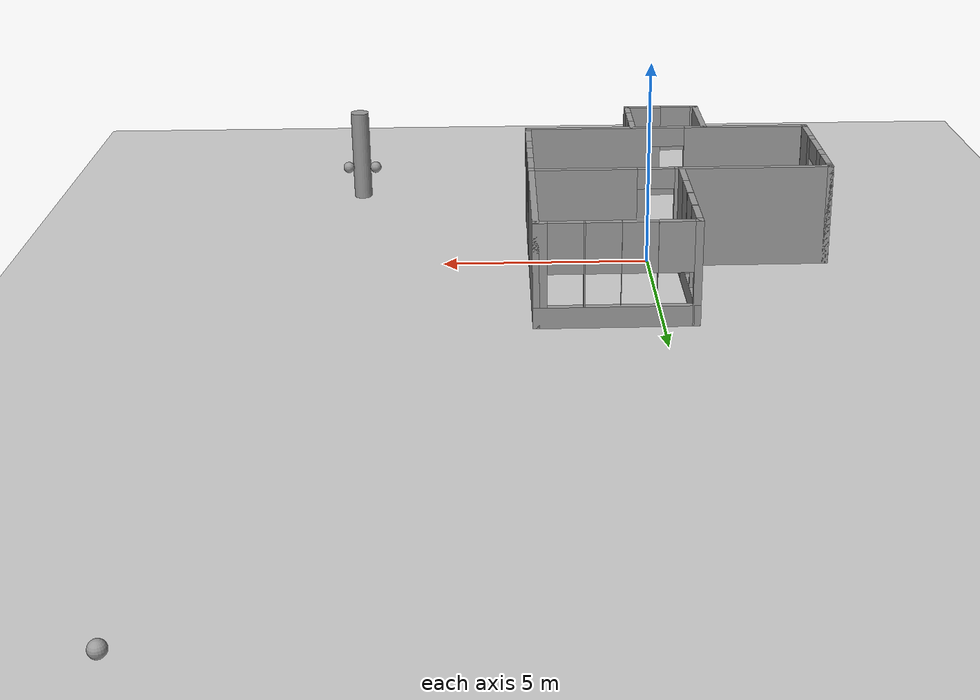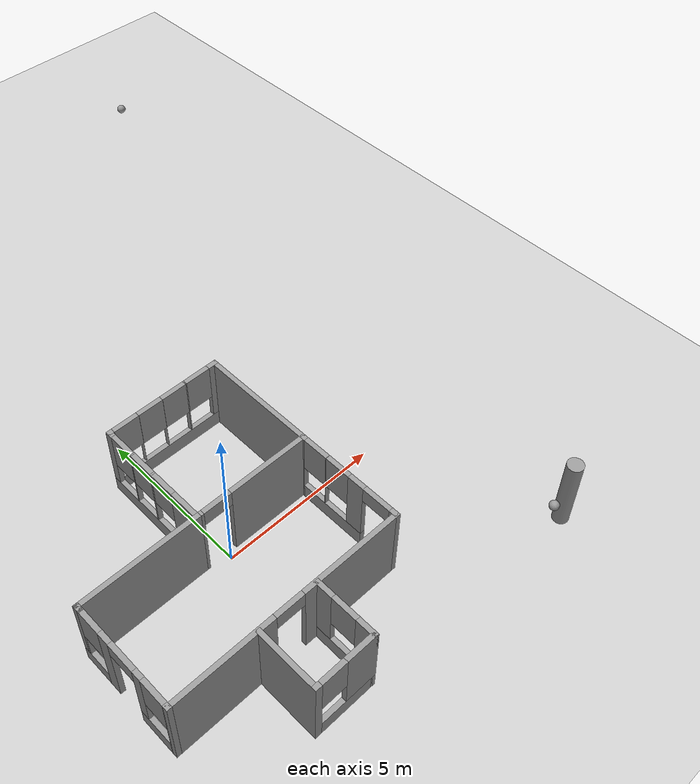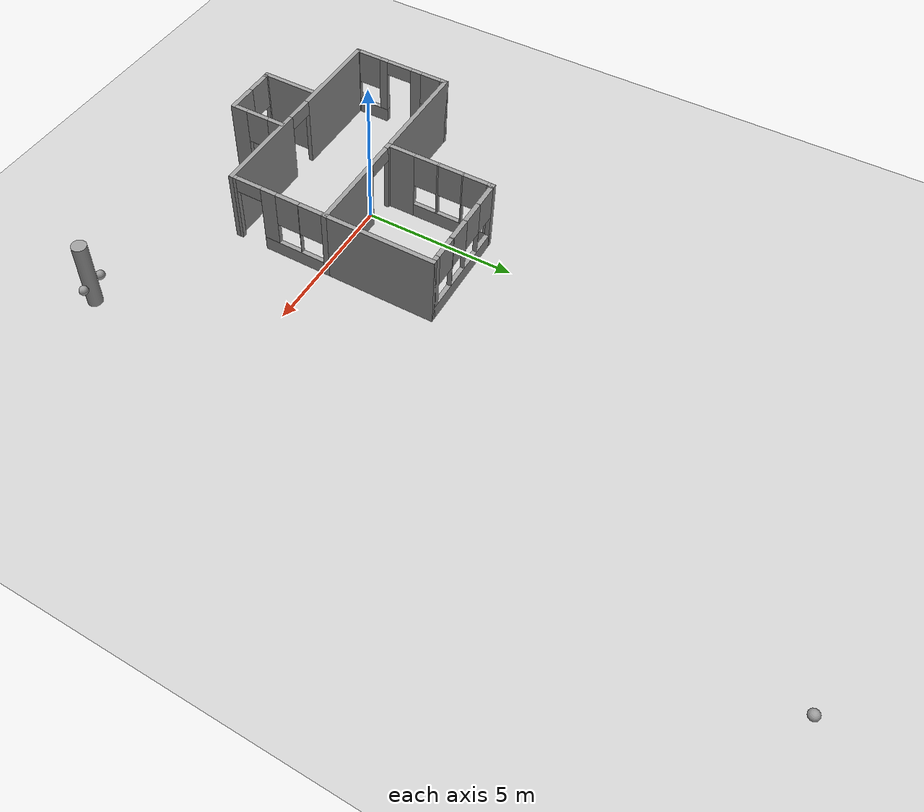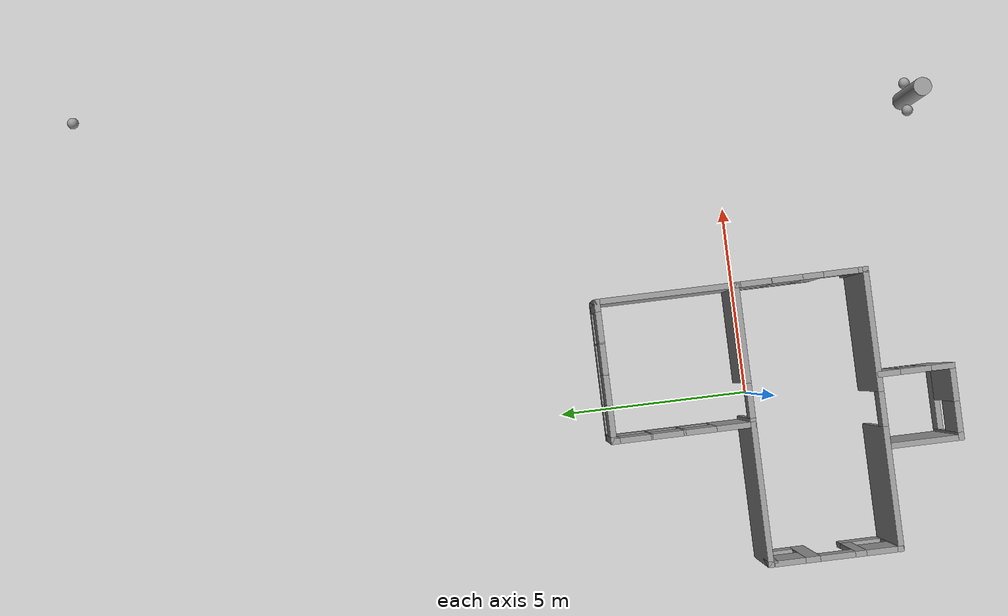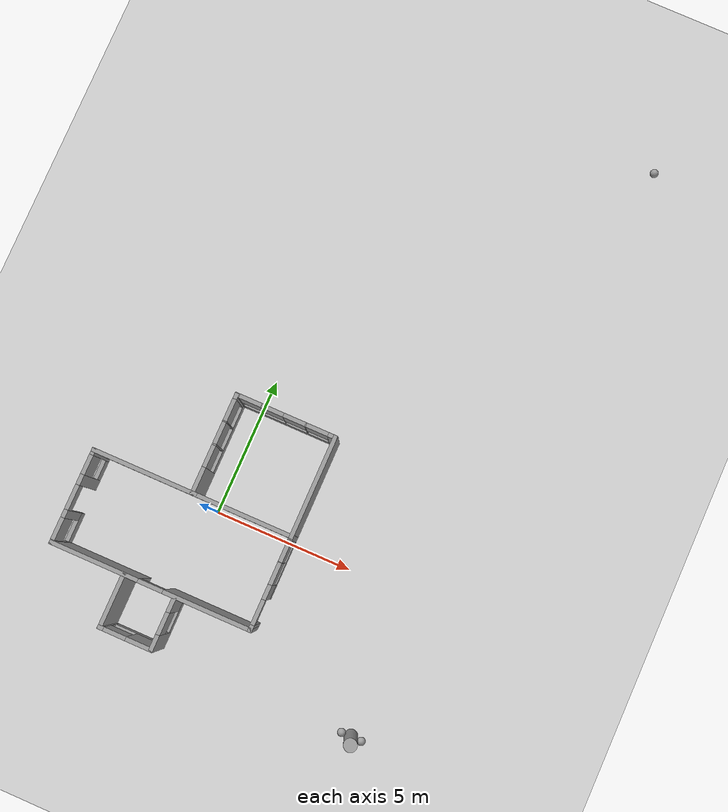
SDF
<sdf version="1.7">
 <world name="default">
  <light name="sun" type="directional">
   <pose>0 0 10 0 -0 0</pose>
   <diffuse>0.8 0.8 0.8 1</diffuse>
   <specular>0.2 0.2 0.2 1</specular>
   <attenuation>
    <range>1000</range>
    <constant>0.9</constant>
    <linear>0.01</linear>
    <quadratic>0.001</quadratic>
   </attenuation>
   <direction>-0.5 0.1 -0.9</direction>
   <spot><inner_angle>0</inner_angle><outer_angle>0</outer_angle><falloff>0</falloff></spot>
  </light>
  <model name="ground_plane">
   <static>1</static>
   <link name="link">
    <collision name="collision">
     <geometry><plane><normal>0 0 1</normal><size>100 100</size></plane></geometry>
     <surface>
      <contact><collide_bitmask>65535</collide_bitmask></contact>
      <friction><ode><mu>100</mu><mu2>50</mu2></ode></friction>
     </surface>
    </collision>
    <visual name="visual">
     <cast_shadows>0</cast_shadows>
     <geometry><plane><normal>0 0 1</normal><size>100 100</size></plane></geometry>
     <material>
      <script><uri>file://media/materials/scripts/gazebo.material</uri><name>Gazebo/Grey</name></script>
     </material>
    </visual>
   </link>
  </model>
  <gravity>0 0 -9.8</gravity>
  <magnetic_field>6e-06 2.3e-05 -4.2e-05</magnetic_field>
  <atmosphere type="adiabatic"/>
  <physics type="ode">
   <max_step_size>0.001</max_step_size>
   <real_time_factor>1</real_time_factor>
   <real_time_update_rate>1000</real_time_update_rate>
  </physics>
  <scene><ambient>0.4 0.4 0.4 1</ambient><background>0.7 0.7 0.7 1</background><shadows>1</shadows></scene>
  <audio><device>default</device></audio>
  <spherical_coordinates>
   <surface_model>EARTH_WGS84</surface_model>
   <latitude_deg>0</latitude_deg>
   <longitude_deg>0</longitude_deg>
   <elevation>0</elevation>
   <heading_deg>0</heading_deg>
  </spherical_coordinates>
  <model name="TestHouse">
   <pose>-0.750418 -0.582188 0 0 -0 0</pose>
   <link name="Wall_1">
    <collision name="Wall_1_Collision">
     <geometry><box><size>3.75 0.15 2.5</size></box></geometry>
     <pose>0 0 1.25 0 -0 0</pose>
    </collision>
    <visual name="Wall_1_Visual">
     <pose>0 0 1.25 0 -0 0</pose>
     <geometry><box><size>3.75 0.15 2.5</size></box></geometry>
     <material>
      <script><uri>file://media/materials/scripts/gazebo.material</uri><name>Gazebo/Grey</name></script>
      <ambient>1 1 1 1</ambient>
     </material>
     <meta><layer>0</layer></meta>
    </visual>
    <pose>-1.8 0.819366 0 0 -0 0</pose>
   </link>
   <link name="Wall_21">
    <collision name="Wall_21_Collision">
     <geometry><box><size>0.25 0.15 2.5</size></box></geometry>
     <pose>0 0 1.25 0 -0 0</pose>
    </collision>
    <visual name="Wall_21_Visual">
     <pose>0 0 1.25 0 -0 0</pose>
     <geometry><box><size>0.25 0.15 2.5</size></box></geometry>
     <material>
      <script><uri>file://media/materials/scripts/gazebo.material</uri><name>Gazebo/Grey</name></script>
      <ambient>1 1 1 1</ambient>
     </material>
     <meta><layer>0</layer></meta>
    </visual>
    <pose>-3.6 0.769366 0 0 -0 -1.5708</pose>
   </link>
   <link name="Wall_24">
    <pose>-3.6 -0.855634 0 0 -0 1.5708</pose>
    <visual name="Wall_24_Visual_0">
     <pose>-1.66566 0 1.25 0 -0 0</pose>
     <geometry><box><size>0.168689 0.15 2.5</size></box></geometry>
     <material>
      <script><uri>file://media/materials/scripts/gazebo.material</uri><name>Gazebo/Grey</name></script>
      <ambient>1 1 1 1</ambient>
     </material>
     <meta><layer>0</layer></meta>
    </visual>
    <collision name="Wall_24_Collision_0">
     <geometry><box><size>0.168689 0.15 2.5</size></box></geometry>
     <pose>-1.66566 0 1.25 0 -0 0</pose>
    </collision>
    <visual name="Wall_24_Visual_1">
     <pose>0.595544 0 1.25 0 -0 0</pose>
     <geometry><box><size>0.378238 0.15 2.5</size></box></geometry>
     <material>
      <script><uri>file://media/materials/scripts/gazebo.material</uri><name>Gazebo/Grey</name></script>
      <ambient>1 1 1 1</ambient>
     </material>
     <meta><layer>0</layer></meta>
    </visual>
    <collision name="Wall_24_Collision_1">
     <geometry><box><size>0.378238 0.15 2.5</size></box></geometry>
     <pose>0.595544 0 1.25 0 -0 0</pose>
    </collision>
    <visual name="Wall_24_Visual_2">
     <pose>-1.03744 0 0.25 0 -0 0</pose>
     <geometry><box><size>1.08774 0.15 0.5</size></box></geometry>
     <material>
      <script><uri>file://media/materials/scripts/gazebo.material</uri><name>Gazebo/Grey</name></script>
      <ambient>1 1 1 1</ambient>
     </material>
     <meta><layer>0</layer></meta>
    </visual>
    <collision name="Wall_24_Collision_2">
     <geometry><box><size>1.08774 0.15 0.5</size></box></geometry>
     <pose>-1.03744 0 0.25 0 -0 0</pose>
    </collision>
    <visual name="Wall_24_Visual_3">
     <pose>1.26733 0 0.25 0 -0 0</pose>
     <geometry><box><size>0.965337 0.15 0.5</size></box></geometry>
     <material>
      <script><uri>file://media/materials/scripts/gazebo.material</uri><name>Gazebo/Grey</name></script>
      <ambient>1 1 1 1</ambient>
     </material>
     <meta><layer>0</layer></meta>
    </visual>
    <collision name="Wall_24_Collision_3">
     <geometry><box><size>0.965337 0.15 0.5</size></box></geometry>
     <pose>1.26733 0 0.25 0 -0 0</pose>
    </collision>
    <visual name="Wall_24_Visual_4">
     <pose>-0.637443 0 1.5 0 -0 0</pose>
     <geometry><box><size>0.287736 0.15 2</size></box></geometry>
     <material>
      <script><uri>file://media/materials/scripts/gazebo.material</uri><name>Gazebo/Grey</name></script>
      <ambient>1 1 1 1</ambient>
     </material>
     <meta><layer>0</layer></meta>
    </visual>
    <collision name="Wall_24_Collision_4">
     <geometry><box><size>0.287736 0.15 2</size></box></geometry>
     <pose>-0.637443 0 1.5 0 -0 0</pose>
    </collision>
    <visual name="Wall_24_Visual_5">
     <pose>-0.637443 0 1.5 0 -0 0</pose>
     <geometry><box><size>0.287736 0.15 2</size></box></geometry>
     <material>
      <script><uri>file://media/materials/scripts/gazebo.material</uri><name>Gazebo/Grey</name></script>
      <ambient>1 1 1 1</ambient>
     </material>
     <meta><layer>0</layer></meta>
    </visual>
    <collision name="Wall_24_Collision_5">
     <geometry><box><size>0.287736 0.15 2</size></box></geometry>
     <pose>-0.637443 0 1.5 0 -0 0</pose>
    </collision>
    <visual name="Wall_24_Visual_6">
     <pose>1.66733 0 1.5 0 -0 0</pose>
     <geometry><box><size>0.165337 0.15 2</size></box></geometry>
     <material>
      <script><uri>file://media/materials/scripts/gazebo.material</uri><name>Gazebo/Grey</name></script>
      <ambient>1 1 1 1</ambient>
     </material>
     <meta><layer>0</layer></meta>
    </visual>
    <collision name="Wall_24_Collision_6">
     <geometry><box><size>0.165337 0.15 2</size></box></geometry>
     <pose>1.66733 0 1.5 0 -0 0</pose>
    </collision>
    <visual name="Wall_24_Visual_7">
     <pose>-1.18131 0 1.9 0 -0 0</pose>
     <geometry><box><size>0.8 0.15 1.2</size></box></geometry>
     <material>
      <script><uri>file://media/materials/scripts/gazebo.material</uri><name>Gazebo/Grey</name></script>
      <ambient>1 1 1 1</ambient>
     </material>
     <meta><layer>0</layer></meta>
    </visual>
    <collision name="Wall_24_Collision_7">
     <geometry><box><size>0.8 0.15 1.2</size></box></geometry>
     <pose>-1.18131 0 1.9 0 -0 0</pose>
    </collision>
    <visual name="Wall_24_Visual_8">
     <pose>1.18466 0 1.9 0 -0 0</pose>
     <geometry><box><size>0.8 0.15 1.2</size></box></geometry>
     <material>
      <script><uri>file://media/materials/scripts/gazebo.material</uri><name>Gazebo/Grey</name></script>
      <ambient>1 1 1 1</ambient>
     </material>
     <meta><layer>0</layer></meta>
    </visual>
    <collision name="Wall_24_Collision_8">
     <geometry><box><size>0.8 0.15 1.2</size></box></geometry>
     <pose>1.18466 0 1.9 0 -0 0</pose>
    </collision>
    <visual name="Wall_24_Visual_9">
     <pose>-0.043575 0 2.25 0 -0 0</pose>
     <geometry><box><size>0.9 0.15 0.5</size></box></geometry>
     <material>
      <script><uri>file://media/materials/scripts/gazebo.material</uri><name>Gazebo/Grey</name></script>
      <ambient>1 1 1 1</ambient>
     </material>
     <meta><layer>0</layer></meta>
    </visual>
    <collision name="Wall_24_Collision_9">
     <geometry><box><size>0.9 0.15 0.5</size></box></geometry>
     <pose>-0.043575 0 2.25 0 -0 0</pose>
    </collision>
    <visual name="Wall_24_Visual_10">
     <pose>-0.043575 0 2.25 0 -0 0</pose>
     <geometry><box><size>0.9 0.15 0.5</size></box></geometry>
     <material>
      <script><uri>file://media/materials/scripts/gazebo.material</uri><name>Gazebo/Grey</name></script>
      <ambient>1 1 1 1</ambient>
     </material>
     <meta><layer>0</layer></meta>
    </visual>
    <collision name="Wall_24_Collision_10">
     <geometry><box><size>0.9 0.15 0.5</size></box></geometry>
     <pose>-0.043575 0 2.25 0 -0 0</pose>
    </collision>
   </link>
   <link name="Wall_32">
    <pose>1.8 4.41937 0 0 -0 0</pose>
    <visual name="Wall_32_Visual_0">
     <pose>-1.78387 0 1.25 0 -0 0</pose>
     <geometry><box><size>0.182268 0.15 2.5</size></box></geometry>
     <material>
      <script><uri>file://media/materials/scripts/gazebo.material</uri><name>Gazebo/Grey</name></script>
      <ambient>1 1 1 1</ambient>
     </material>
     <meta><layer>0</layer></meta>
    </visual>
    <collision name="Wall_32_Collision_0">
     <geometry><box><size>0.182268 0.15 2.5</size></box></geometry>
     <pose>-1.78387 0 1.25 0 -0 0</pose>
    </collision>
    <visual name="Wall_32_Visual_1">
     <pose>0.091134 0 0.25 0 -0 0</pose>
     <geometry><box><size>3.56773 0.15 0.5</size></box></geometry>
     <material>
      <script><uri>file://media/materials/scripts/gazebo.material</uri><name>Gazebo/Grey</name></script>
      <ambient>1 1 1 1</ambient>
     </material>
     <meta><layer>0</layer></meta>
    </visual>
    <collision name="Wall_32_Collision_1">
     <geometry><box><size>3.56773 0.15 0.5</size></box></geometry>
     <pose>0.091134 0 0.25 0 -0 0</pose>
    </collision>
    <visual name="Wall_32_Visual_2">
     <pose>-0.891292 0 1.5 0 -0 0</pose>
     <geometry><box><size>0.00288 0.15 2</size></box></geometry>
     <material>
      <script><uri>file://media/materials/scripts/gazebo.material</uri><name>Gazebo/Grey</name></script>
      <ambient>1 1 1 1</ambient>
     </material>
     <meta><layer>0</layer></meta>
    </visual>
    <collision name="Wall_32_Collision_2">
     <geometry><box><size>0.00288 0.15 2</size></box></geometry>
     <pose>-0.891292 0 1.5 0 -0 0</pose>
    </collision>
    <visual name="Wall_32_Visual_3">
     <pose>-0.088412 0 1.5 0 -0 0</pose>
     <geometry><box><size>0.00288 0.15 2</size></box></geometry>
     <material>
      <script><uri>file://media/materials/scripts/gazebo.material</uri><name>Gazebo/Grey</name></script>
      <ambient>1 1 1 1</ambient>
     </material>
     <meta><layer>0</layer></meta>
    </visual>
    <collision name="Wall_32_Collision_3">
     <geometry><box><size>0.00288 0.15 2</size></box></geometry>
     <pose>-0.088412 0 1.5 0 -0 0</pose>
    </collision>
    <visual name="Wall_32_Visual_4">
     <pose>0.729336 0 1.5 0 -0 0</pose>
     <geometry><box><size>0.032616 0.15 2</size></box></geometry>
     <material>
      <script><uri>file://media/materials/scripts/gazebo.material</uri><name>Gazebo/Grey</name></script>
      <ambient>1 1 1 1</ambient>
     </material>
     <meta><layer>0</layer></meta>
    </visual>
    <collision name="Wall_32_Collision_4">
     <geometry><box><size>0.032616 0.15 2</size></box></geometry>
     <pose>0.729336 0 1.5 0 -0 0</pose>
    </collision>
    <visual name="Wall_32_Visual_5">
     <pose>1.71032 0 1.5 0 -0 0</pose>
     <geometry><box><size>0.329356 0.15 2</size></box></geometry>
     <material>
      <script><uri>file://media/materials/scripts/gazebo.material</uri><name>Gazebo/Grey</name></script>
      <ambient>1 1 1 1</ambient>
     </material>
     <meta><layer>0</layer></meta>
    </visual>
    <collision name="Wall_32_Collision_5">
     <geometry><box><size>0.329356 0.15 2</size></box></geometry>
     <pose>1.71032 0 1.5 0 -0 0</pose>
    </collision>
    <visual name="Wall_32_Visual_6">
     <pose>-1.29273 0 1.9 0 -0 0</pose>
     <geometry><box><size>0.8 0.15 1.2</size></box></geometry>
     <material>
      <script><uri>file://media/materials/scripts/gazebo.material</uri><name>Gazebo/Grey</name></script>
      <ambient>1 1 1 1</ambient>
     </material>
     <meta><layer>0</layer></meta>
    </visual>
    <collision name="Wall_32_Collision_6">
     <geometry><box><size>0.8 0.15 1.2</size></box></geometry>
     <pose>-1.29273 0 1.9 0 -0 0</pose>
    </collision>
    <visual name="Wall_32_Visual_7">
     <pose>-0.489852 0 1.9 0 -0 0</pose>
     <geometry><box><size>0.8 0.15 1.2</size></box></geometry>
     <material>
      <script><uri>file://media/materials/scripts/gazebo.material</uri><name>Gazebo/Grey</name></script>
      <ambient>1 1 1 1</ambient>
     </material>
     <meta><layer>0</layer></meta>
    </visual>
    <collision name="Wall_32_Collision_7">
     <geometry><box><size>0.8 0.15 1.2</size></box></geometry>
     <pose>-0.489852 0 1.9 0 -0 0</pose>
    </collision>
    <visual name="Wall_32_Visual_8">
     <pose>0.313028 0 1.9 0 -0 0</pose>
     <geometry><box><size>0.8 0.15 1.2</size></box></geometry>
     <material>
      <script><uri>file://media/materials/scripts/gazebo.material</uri><name>Gazebo/Grey</name></script>
      <ambient>1 1 1 1</ambient>
     </material>
     <meta><layer>0</layer></meta>
    </visual>
    <collision name="Wall_32_Collision_8">
     <geometry><box><size>0.8 0.15 1.2</size></box></geometry>
     <pose>0.313028 0 1.9 0 -0 0</pose>
    </collision>
    <visual name="Wall_32_Visual_9">
     <pose>1.14564 0 1.9 0 -0 0</pose>
     <geometry><box><size>0.8 0.15 1.2</size></box></geometry>
     <material>
      <script><uri>file://media/materials/scripts/gazebo.material</uri><name>Gazebo/Grey</name></script>
      <ambient>1 1 1 1</ambient>
     </material>
     <meta><layer>0</layer></meta>
    </visual>
    <collision name="Wall_32_Collision_9">
     <geometry><box><size>0.8 0.15 1.2</size></box></geometry>
     <pose>1.14564 0 1.9 0 -0 0</pose>
    </collision>
   </link>
   <link name="Wall_33">
    <collision name="Wall_33_Collision">
     <geometry><box><size>3.75 0.15 2.5</size></box></geometry>
     <pose>0 0 1.25 0 -0 0</pose>
    </collision>
    <visual name="Wall_33_Visual">
     <pose>0 0 1.25 0 -0 0</pose>
     <geometry><box><size>3.75 0.15 2.5</size></box></geometry>
     <material>
      <script><uri>file://media/materials/scripts/gazebo.material</uri><name>Gazebo/Grey</name></script>
      <ambient>1 1 1 1</ambient>
     </material>
     <meta><layer>0</layer></meta>
    </visual>
    <pose>3.6 2.61937 0 0 -0 -1.5708</pose>
   </link>
   <link name="Wall_34">
    <pose>1.8 0.819366 0 0 -0 3.14159</pose>
    <visual name="Wall_34_Visual_0">
     <pose>-0.569038 0 1.25 0 -0 0</pose>
     <geometry><box><size>2.61192 0.15 2.5</size></box></geometry>
     <material>
      <script><uri>file://media/materials/scripts/gazebo.material</uri><name>Gazebo/Grey</name></script>
      <ambient>1 1 1 1</ambient>
     </material>
     <meta><layer>0</layer></meta>
    </visual>
    <collision name="Wall_34_Collision_0">
     <geometry><box><size>2.61192 0.15 2.5</size></box></geometry>
     <pose>-0.569038 0 1.25 0 -0 0</pose>
    </collision>
    <visual name="Wall_34_Visual_1">
     <pose>1.75596 0 1.25 0 -0 0</pose>
     <geometry><box><size>0.238076 0.15 2.5</size></box></geometry>
     <material>
      <script><uri>file://media/materials/scripts/gazebo.material</uri><name>Gazebo/Grey</name></script>
      <ambient>1 1 1 1</ambient>
     </material>
     <meta><layer>0</layer></meta>
    </visual>
    <collision name="Wall_34_Collision_1">
     <geometry><box><size>0.238076 0.15 2.5</size></box></geometry>
     <pose>1.75596 0 1.25 0 -0 0</pose>
    </collision>
    <visual name="Wall_34_Visual_2">
     <pose>1.18692 0 2.25 0 -0 0</pose>
     <geometry><box><size>0.9 0.15 0.5</size></box></geometry>
     <material>
      <script><uri>file://media/materials/scripts/gazebo.material</uri><name>Gazebo/Grey</name></script>
      <ambient>1 1 1 1</ambient>
     </material>
     <meta><layer>0</layer></meta>
    </visual>
    <collision name="Wall_34_Collision_2">
     <geometry><box><size>0.9 0.15 0.5</size></box></geometry>
     <pose>1.18692 0 2.25 0 -0 0</pose>
    </collision>
   </link>
   <link name="Wall_36">
    <pose>3.6 -0.855634 0 0 -0 -1.5708</pose>
    <visual name="Wall_36_Visual_0">
     <pose>-1.6544 0 1.25 0 -0 0</pose>
     <geometry><box><size>0.191195 0.15 2.5</size></box></geometry>
     <material>
      <script><uri>file://media/materials/scripts/gazebo.material</uri><name>Gazebo/Grey</name></script>
      <ambient>1 1 1 1</ambient>
     </material>
     <meta><layer>0</layer></meta>
    </visual>
    <collision name="Wall_36_Collision_0">
     <geometry><box><size>0.191195 0.15 2.5</size></box></geometry>
     <pose>-1.6544 0 1.25 0 -0 0</pose>
    </collision>
    <visual name="Wall_36_Visual_1">
     <pose>1.61955 0 1.25 0 -0 0</pose>
     <geometry><box><size>0.260906 0.15 2.5</size></box></geometry>
     <material>
      <script><uri>file://media/materials/scripts/gazebo.material</uri><name>Gazebo/Grey</name></script>
      <ambient>1 1 1 1</ambient>
     </material>
     <meta><layer>0</layer></meta>
    </visual>
    <collision name="Wall_36_Collision_1">
     <geometry><box><size>0.260906 0.15 2.5</size></box></geometry>
     <pose>1.61955 0 1.25 0 -0 0</pose>
    </collision>
    <visual name="Wall_36_Visual_2">
     <pose>-0.484856 0 0.25 0 -0 0</pose>
     <geometry><box><size>2.1479 0.15 0.5</size></box></geometry>
     <material>
      <script><uri>file://media/materials/scripts/gazebo.material</uri><name>Gazebo/Grey</name></script>
      <ambient>1 1 1 1</ambient>
     </material>
     <meta><layer>0</layer></meta>
    </visual>
    <collision name="Wall_36_Collision_2">
     <geometry><box><size>2.1479 0.15 0.5</size></box></geometry>
     <pose>-0.484856 0 0.25 0 -0 0</pose>
    </collision>
    <visual name="Wall_36_Visual_3">
     <pose>-0.751547 0 1.5 0 -0 0</pose>
     <geometry><box><size>0.014516 0.15 2</size></box></geometry>
     <material>
      <script><uri>file://media/materials/scripts/gazebo.material</uri><name>Gazebo/Grey</name></script>
      <ambient>1 1 1 1</ambient>
     </material>
     <meta><layer>0</layer></meta>
    </visual>
    <collision name="Wall_36_Collision_3">
     <geometry><box><size>0.014516 0.15 2</size></box></geometry>
     <pose>-0.751547 0 1.5 0 -0 0</pose>
    </collision>
    <visual name="Wall_36_Visual_4">
     <pose>0.322402 0 1.5 0 -0 0</pose>
     <geometry><box><size>0.533384 0.15 2</size></box></geometry>
     <material>
      <script><uri>file://media/materials/scripts/gazebo.material</uri><name>Gazebo/Grey</name></script>
      <ambient>1 1 1 1</ambient>
     </material>
     <meta><layer>0</layer></meta>
    </visual>
    <collision name="Wall_36_Collision_4">
     <geometry><box><size>0.533384 0.15 2</size></box></geometry>
     <pose>0.322402 0 1.5 0 -0 0</pose>
    </collision>
    <visual name="Wall_36_Visual_5">
     <pose>-1.15881 0 1.9 0 -0 0</pose>
     <geometry><box><size>0.8 0.15 1.2</size></box></geometry>
     <material>
      <script><uri>file://media/materials/scripts/gazebo.material</uri><name>Gazebo/Grey</name></script>
      <ambient>1 1 1 1</ambient>
     </material>
     <meta><layer>0</layer></meta>
    </visual>
    <collision name="Wall_36_Collision_5">
     <geometry><box><size>0.8 0.15 1.2</size></box></geometry>
     <pose>-1.15881 0 1.9 0 -0 0</pose>
    </collision>
    <visual name="Wall_36_Visual_6">
     <pose>-0.34429 0 1.9 0 -0 0</pose>
     <geometry><box><size>0.8 0.15 1.2</size></box></geometry>
     <material>
      <script><uri>file://media/materials/scripts/gazebo.material</uri><name>Gazebo/Grey</name></script>
      <ambient>1 1 1 1</ambient>
     </material>
     <meta><layer>0</layer></meta>
    </visual>
    <collision name="Wall_36_Collision_6">
     <geometry><box><size>0.8 0.15 1.2</size></box></geometry>
     <pose>-0.34429 0 1.9 0 -0 0</pose>
    </collision>
    <visual name="Wall_36_Visual_7">
     <pose>1.03909 0 2.25 0 -0 0</pose>
     <geometry><box><size>0.9 0.15 0.5</size></box></geometry>
     <material>
      <script><uri>file://media/materials/scripts/gazebo.material</uri><name>Gazebo/Grey</name></script>
      <ambient>1 1 1 1</ambient>
     </material>
     <meta><layer>0</layer></meta>
    </visual>
    <collision name="Wall_36_Collision_7">
     <geometry><box><size>0.9 0.15 0.5</size></box></geometry>
     <pose>1.03909 0 2.25 0 -0 0</pose>
    </collision>
   </link>
   <link name="Wall_39">
    <collision name="Wall_39_Collision">
     <geometry><box><size>2 0.15 2.5</size></box></geometry>
     <pose>0 0 1.25 0 -0 0</pose>
    </collision>
    <visual name="Wall_39_Visual">
     <pose>0 0 1.25 0 -0 0</pose>
     <geometry><box><size>2 0.15 2.5</size></box></geometry>
     <material>
      <script><uri>file://media/materials/scripts/gazebo.material</uri><name>Gazebo/Grey</name></script>
      <ambient>1 1 1 1</ambient>
     </material>
     <meta><layer>0</layer></meta>
    </visual>
    <pose>-0.967566 -3.49437 0 0 -0 -1.5708</pose>
   </link>
   <link name="Wall_40">
    <pose>-0.042566 -4.41937 0 0 -0 0</pose>
    <visual name="Wall_40_Visual_0">
     <pose>-0.895796 0 1.25 0 -0 0</pose>
     <geometry><box><size>0.208407 0.15 2.5</size></box></geometry>
     <material>
      <script><uri>file://media/materials/scripts/gazebo.material</uri><name>Gazebo/Grey</name></script>
      <ambient>1 1 1 1</ambient>
     </material>
     <meta><layer>0</layer></meta>
    </visual>
    <collision name="Wall_40_Collision_0">
     <geometry><box><size>0.208407 0.15 2.5</size></box></geometry>
     <pose>-0.895796 0 1.25 0 -0 0</pose>
    </collision>
    <visual name="Wall_40_Visual_1">
     <pose>0.104204 0 0.25 0 -0 0</pose>
     <geometry><box><size>1.79159 0.15 0.5</size></box></geometry>
     <material>
      <script><uri>file://media/materials/scripts/gazebo.material</uri><name>Gazebo/Grey</name></script>
      <ambient>1 1 1 1</ambient>
     </material>
     <meta><layer>0</layer></meta>
    </visual>
    <collision name="Wall_40_Collision_1">
     <geometry><box><size>1.79159 0.15 0.5</size></box></geometry>
     <pose>0.104204 0 0.25 0 -0 0</pose>
    </collision>
    <visual name="Wall_40_Visual_2">
     <pose>0.504204 0 1.5 0 -0 0</pose>
     <geometry><box><size>0.991593 0.15 2</size></box></geometry>
     <material>
      <script><uri>file://media/materials/scripts/gazebo.material</uri><name>Gazebo/Grey</name></script>
      <ambient>1 1 1 1</ambient>
     </material>
     <meta><layer>0</layer></meta>
    </visual>
    <collision name="Wall_40_Collision_2">
     <geometry><box><size>0.991593 0.15 2</size></box></geometry>
     <pose>0.504204 0 1.5 0 -0 0</pose>
    </collision>
    <visual name="Wall_40_Visual_3">
     <pose>-0.391593 0 1.9 0 -0 0</pose>
     <geometry><box><size>0.8 0.15 1.2</size></box></geometry>
     <material>
      <script><uri>file://media/materials/scripts/gazebo.material</uri><name>Gazebo/Grey</name></script>
      <ambient>1 1 1 1</ambient>
     </material>
     <meta><layer>0</layer></meta>
    </visual>
    <collision name="Wall_40_Collision_3">
     <geometry><box><size>0.8 0.15 1.2</size></box></geometry>
     <pose>-0.391593 0 1.9 0 -0 0</pose>
    </collision>
   </link>
   <link name="Wall_41">
    <pose>0.882434 -3.49437 0 0 -0 1.5708</pose>
    <visual name="Wall_41_Visual_0">
     <pose>-0.695303 0 1.25 0 -0 0</pose>
     <geometry><box><size>0.609394 0.15 2.5</size></box></geometry>
     <material>
      <script><uri>file://media/materials/scripts/gazebo.material</uri><name>Gazebo/Grey</name></script>
      <ambient>1 1 1 1</ambient>
     </material>
     <meta><layer>0</layer></meta>
    </visual>
    <collision name="Wall_41_Collision_0">
     <geometry><box><size>0.609394 0.15 2.5</size></box></geometry>
     <pose>-0.695303 0 1.25 0 -0 0</pose>
    </collision>
    <visual name="Wall_41_Visual_1">
     <pose>0.304697 0 0.25 0 -0 0</pose>
     <geometry><box><size>1.39061 0.15 0.5</size></box></geometry>
     <material>
      <script><uri>file://media/materials/scripts/gazebo.material</uri><name>Gazebo/Grey</name></script>
      <ambient>1 1 1 1</ambient>
     </material>
     <meta><layer>0</layer></meta>
    </visual>
    <collision name="Wall_41_Collision_1">
     <geometry><box><size>1.39061 0.15 0.5</size></box></geometry>
     <pose>0.304697 0 0.25 0 -0 0</pose>
    </collision>
    <visual name="Wall_41_Visual_2">
     <pose>0.704697 0 1.5 0 -0 0</pose>
     <geometry><box><size>0.590606 0.15 2</size></box></geometry>
     <material>
      <script><uri>file://media/materials/scripts/gazebo.material</uri><name>Gazebo/Grey</name></script>
      <ambient>1 1 1 1</ambient>
     </material>
     <meta><layer>0</layer></meta>
    </visual>
    <collision name="Wall_41_Collision_2">
     <geometry><box><size>0.590606 0.15 2</size></box></geometry>
     <pose>0.704697 0 1.5 0 -0 0</pose>
    </collision>
    <visual name="Wall_41_Visual_3">
     <pose>0.009394 0 1.9 0 -0 0</pose>
     <geometry><box><size>0.8 0.15 1.2</size></box></geometry>
     <material>
      <script><uri>file://media/materials/scripts/gazebo.material</uri><name>Gazebo/Grey</name></script>
      <ambient>1 1 1 1</ambient>
     </material>
     <meta><layer>0</layer></meta>
    </visual>
    <collision name="Wall_41_Collision_3">
     <geometry><box><size>0.8 0.15 1.2</size></box></geometry>
     <pose>0.009394 0 1.9 0 -0 0</pose>
    </collision>
   </link>
   <link name="Wall_43">
    <pose>0 -2.53063 0 0 -0 0</pose>
    <visual name="Wall_43_Visual_0">
     <pose>-2.06625 0 1.25 0 -0 0</pose>
     <geometry><box><size>3.21749 0.15 2.5</size></box></geometry>
     <material>
      <script><uri>file://media/materials/scripts/gazebo.material</uri><name>Gazebo/Grey</name></script>
      <ambient>1 1 1 1</ambient>
     </material>
     <meta><layer>0</layer></meta>
    </visual>
    <collision name="Wall_43_Collision_0">
     <geometry><box><size>3.21749 0.15 2.5</size></box></geometry>
     <pose>-2.06625 0 1.25 0 -0 0</pose>
    </collision>
    <visual name="Wall_43_Visual_1">
     <pose>2.05875 0 1.25 0 -0 0</pose>
     <geometry><box><size>3.23251 0.15 2.5</size></box></geometry>
     <material>
      <script><uri>file://media/materials/scripts/gazebo.material</uri><name>Gazebo/Grey</name></script>
      <ambient>1 1 1 1</ambient>
     </material>
     <meta><layer>0</layer></meta>
    </visual>
    <collision name="Wall_43_Collision_1">
     <geometry><box><size>3.23251 0.15 2.5</size></box></geometry>
     <pose>2.05875 0 1.25 0 -0 0</pose>
    </collision>
    <visual name="Wall_43_Visual_2">
     <pose>-0.007507 0 2.25 0 -0 0</pose>
     <geometry><box><size>0.9 0.15 0.5</size></box></geometry>
     <material>
      <script><uri>file://media/materials/scripts/gazebo.material</uri><name>Gazebo/Grey</name></script>
      <ambient>1 1 1 1</ambient>
     </material>
     <meta><layer>0</layer></meta>
    </visual>
    <collision name="Wall_43_Collision_2">
     <geometry><box><size>0.9 0.15 0.5</size></box></geometry>
     <pose>-0.007507 0 2.25 0 -0 0</pose>
    </collision>
   </link>
   <link name="Wall_6">
    <pose>0 2.61937 0 0 -0 1.5708</pose>
    <visual name="Wall_6_Visual_0">
     <pose>-1.36472 0 1.25 0 -0 0</pose>
     <geometry><box><size>1.02056 0.15 2.5</size></box></geometry>
     <material>
      <script><uri>file://media/materials/scripts/gazebo.material</uri><name>Gazebo/Grey</name></script>
      <ambient>1 1 1 1</ambient>
     </material>
     <meta><layer>0</layer></meta>
    </visual>
    <collision name="Wall_6_Collision_0">
     <geometry><box><size>1.02056 0.15 2.5</size></box></geometry>
     <pose>-1.36472 0 1.25 0 -0 0</pose>
    </collision>
    <visual name="Wall_6_Visual_1">
     <pose>0.510277 0 0.25 0 -0 0</pose>
     <geometry><box><size>2.72945 0.15 0.5</size></box></geometry>
     <material>
      <script><uri>file://media/materials/scripts/gazebo.material</uri><name>Gazebo/Grey</name></script>
      <ambient>1 1 1 1</ambient>
     </material>
     <meta><layer>0</layer></meta>
    </visual>
    <collision name="Wall_6_Collision_1">
     <geometry><box><size>2.72945 0.15 0.5</size></box></geometry>
     <pose>0.510277 0 0.25 0 -0 0</pose>
    </collision>
    <visual name="Wall_6_Visual_2">
     <pose>-0.027794 0 1.5 0 -0 0</pose>
     <geometry><box><size>0.053302 0.15 2</size></box></geometry>
     <material>
      <script><uri>file://media/materials/scripts/gazebo.material</uri><name>Gazebo/Grey</name></script>
      <ambient>1 1 1 1</ambient>
     </material>
     <meta><layer>0</layer></meta>
    </visual>
    <collision name="Wall_6_Collision_2">
     <geometry><box><size>0.053302 0.15 2</size></box></geometry>
     <pose>-0.027794 0 1.5 0 -0 0</pose>
    </collision>
    <visual name="Wall_6_Visual_3">
     <pose>0.819044 0 1.5 0 -0 0</pose>
     <geometry><box><size>0.040373 0.15 2</size></box></geometry>
     <material>
      <script><uri>file://media/materials/scripts/gazebo.material</uri><name>Gazebo/Grey</name></script>
      <ambient>1 1 1 1</ambient>
     </material>
     <meta><layer>0</layer></meta>
    </visual>
    <collision name="Wall_6_Collision_3">
     <geometry><box><size>0.040373 0.15 2</size></box></geometry>
     <pose>0.819044 0 1.5 0 -0 0</pose>
    </collision>
    <visual name="Wall_6_Visual_4">
     <pose>1.75711 0 1.5 0 -0 0</pose>
     <geometry><box><size>0.23577 0.15 2</size></box></geometry>
     <material>
      <script><uri>file://media/materials/scripts/gazebo.material</uri><name>Gazebo/Grey</name></script>
      <ambient>1 1 1 1</ambient>
     </material>
     <meta><layer>0</layer></meta>
    </visual>
    <collision name="Wall_6_Collision_4">
     <geometry><box><size>0.23577 0.15 2</size></box></geometry>
     <pose>1.75711 0 1.5 0 -0 0</pose>
    </collision>
    <visual name="Wall_6_Visual_5">
     <pose>-0.454445 0 1.9 0 -0 0</pose>
     <geometry><box><size>0.8 0.15 1.2</size></box></geometry>
     <material>
      <script><uri>file://media/materials/scripts/gazebo.material</uri><name>Gazebo/Grey</name></script>
      <ambient>1 1 1 1</ambient>
     </material>
     <meta><layer>0</layer></meta>
    </visual>
    <collision name="Wall_6_Collision_5">
     <geometry><box><size>0.8 0.15 1.2</size></box></geometry>
     <pose>-0.454445 0 1.9 0 -0 0</pose>
    </collision>
    <visual name="Wall_6_Visual_6">
     <pose>0.398857 0 1.9 0 -0 0</pose>
     <geometry><box><size>0.8 0.15 1.2</size></box></geometry>
     <material>
      <script><uri>file://media/materials/scripts/gazebo.material</uri><name>Gazebo/Grey</name></script>
      <ambient>1 1 1 1</ambient>
     </material>
     <meta><layer>0</layer></meta>
    </visual>
    <collision name="Wall_6_Collision_6">
     <geometry><box><size>0.8 0.15 1.2</size></box></geometry>
     <pose>0.398857 0 1.9 0 -0 0</pose>
    </collision>
    <visual name="Wall_6_Visual_7">
     <pose>1.23923 0 1.9 0 -0 0</pose>
     <geometry><box><size>0.8 0.15 1.2</size></box></geometry>
     <material>
      <script><uri>file://media/materials/scripts/gazebo.material</uri><name>Gazebo/Grey</name></script>
      <ambient>1 1 1 1</ambient>
     </material>
     <meta><layer>0</layer></meta>
    </visual>
    <collision name="Wall_6_Collision_7">
     <geometry><box><size>0.8 0.15 1.2</size></box></geometry>
     <pose>1.23923 0 1.9 0 -0 0</pose>
    </collision>
   </link>
   <static>1</static>
  </model>
  <model name="NotYetRoboy">
   <link name="link_1">
    <inertial>
     <mass>0.539277</mass>
     <inertia>
      <ixx>0.261702</ixx>
      <ixy>0</ixy>
      <ixz>0</ixz>
      <iyy>0.261702</iyy>
      <iyz>0</iyz>
      <izz>0.0152927</izz>
     </inertia>
    </inertial>
    <pose>-0.37151 -4.47849 0.206939 0 -0 0</pose>
    <visual name="visual">
     <geometry><cylinder><radius>0.23815</radius><length>2.37766</length></cylinder></geometry>
     <material>
      <lighting>1</lighting>
      <script><uri>file://media/materials/scripts/gazebo.material</uri><name>Gazebo/Grey</name></script>
      <shader type="pixel"/>
     </material>
    </visual>
    <collision name="collision">
     <geometry><cylinder><radius>0.23815</radius><length>2.37766</length></cylinder></geometry>
     <surface>
      <friction>
       <ode><mu>1</mu><mu2>1</mu2><fdir1>0 0 0</fdir1><slip1>0</slip1><slip2>0</slip2></ode>
       <torsional>
        <coefficient>1</coefficient>
        <patch_radius>0</patch_radius>
        <surface_radius>0</surface_radius>
        <use_patch_radius>1</use_patch_radius>
        <ode><slip>0</slip></ode>
       </torsional>
      </friction>
      <bounce><restitution_coefficient>0</restitution_coefficient><threshold>1e+06</threshold></bounce>
      <contact>
       <collide_without_contact>0</collide_without_contact>
       <collide_without_contact_bitmask>1</collide_without_contact_bitmask>
       <collide_bitmask>1</collide_bitmask>
       <ode>
        <soft_cfm>0</soft_cfm>
        <soft_erp>0.2</soft_erp>
        <kp>1e+13</kp>
        <kd>1</kd>
        <max_vel>0.01</max_vel>
        <min_depth>0</min_depth>
       </ode>
       <bullet>
        <split_impulse>1</split_impulse>
        <split_impulse_penetration_threshold>-0.01</split_impulse_penetration_threshold>
        <soft_cfm>0</soft_cfm>
        <soft_erp>0.2</soft_erp>
        <kp>1e+13</kp>
        <kd>1</kd>
       </bullet>
      </contact>
     </surface>
    </collision>
   </link>
   <link name="link_2">
    <inertial>
     <mass>0.0257146</mass>
     <inertia>
      <ixx>0.000223996</ixx>
      <ixy>0</ixy>
      <ixz>0</ixz>
      <iyy>0.000223996</iyy>
      <iyz>0</iyz>
      <izz>0.000223996</izz>
     </inertia>
    </inertial>
    <pose>1.53811 17.7017 0.220542 0 -0 0</pose>
    <visual name="visual">
     <geometry><sphere><radius>0.147571</radius></sphere></geometry>
     <material>
      <lighting>1</lighting>
      <script><uri>file://media/materials/scripts/gazebo.material</uri><name>Gazebo/Grey</name></script>
      <shader type="pixel"/>
     </material>
    </visual>
    <collision name="collision">
     <geometry><sphere><radius>0.147571</radius></sphere></geometry>
     <surface>
      <friction>
       <ode><mu>1</mu><mu2>1</mu2><fdir1>0 0 0</fdir1><slip1>0</slip1><slip2>0</slip2></ode>
       <torsional>
        <coefficient>1</coefficient>
        <patch_radius>0</patch_radius>
        <surface_radius>0</surface_radius>
        <use_patch_radius>1</use_patch_radius>
        <ode><slip>0</slip></ode>
       </torsional>
      </friction>
      <bounce><restitution_coefficient>0</restitution_coefficient><threshold>1e+06</threshold></bounce>
      <contact>
       <collide_without_contact>0</collide_without_contact>
       <collide_without_contact_bitmask>1</collide_without_contact_bitmask>
       <collide_bitmask>1</collide_bitmask>
       <ode>
        <soft_cfm>0</soft_cfm>
        <soft_erp>0.2</soft_erp>
        <kp>1e+13</kp>
        <kd>1</kd>
        <max_vel>0.01</max_vel>
        <min_depth>0</min_depth>
       </ode>
       <bullet>
        <split_impulse>1</split_impulse>
        <split_impulse_penetration_threshold>-0.01</split_impulse_penetration_threshold>
        <soft_cfm>0</soft_cfm>
        <soft_erp>0.2</soft_erp>
        <kp>1e+13</kp>
        <kd>1</kd>
       </bullet>
      </contact>
     </surface>
    </collision>
   </link>
   <link name="link_2_clone">
    <inertial>
     <mass>0.0257146</mass>
     <inertia>
      <ixx>0.000223996</ixx>
      <ixy>0</ixy>
      <ixz>0</ixz>
      <iyy>0.000223996</iyy>
      <iyz>0</iyz>
      <izz>0.000223996</izz>
     </inertia>
    </inertial>
    <pose>-0.749034 -4.39705 -0.136826 0 -0 0</pose>
    <visual name="visual">
     <geometry><sphere><radius>0.147571</radius></sphere></geometry>
     <material>
      <lighting>1</lighting>
      <script><uri>file://media/materials/scripts/gazebo.material</uri><name>Gazebo/Grey</name></script>
      <shader type="pixel"/>
     </material>
    </visual>
    <collision name="collision">
     <geometry><sphere><radius>0.147571</radius></sphere></geometry>
     <surface>
      <friction>
       <ode><mu>1</mu><mu2>1</mu2><fdir1>0 0 0</fdir1><slip1>0</slip1><slip2>0</slip2></ode>
       <torsional>
        <coefficient>1</coefficient>
        <patch_radius>0</patch_radius>
        <surface_radius>0</surface_radius>
        <use_patch_radius>1</use_patch_radius>
        <ode><slip>0</slip></ode>
       </torsional>
      </friction>
      <bounce><restitution_coefficient>0</restitution_coefficient><threshold>1e+06</threshold></bounce>
      <contact>
       <collide_without_contact>0</collide_without_contact>
       <collide_without_contact_bitmask>1</collide_without_contact_bitmask>
       <collide_bitmask>1</collide_bitmask>
       <ode>
        <soft_cfm>0</soft_cfm>
        <soft_erp>0.2</soft_erp>
        <kp>1e+13</kp>
        <kd>1</kd>
        <max_vel>0.01</max_vel>
        <min_depth>0</min_depth>
       </ode>
       <bullet>
        <split_impulse>1</split_impulse>
        <split_impulse_penetration_threshold>-0.01</split_impulse_penetration_threshold>
        <soft_cfm>0</soft_cfm>
        <soft_erp>0.2</soft_erp>
        <kp>1e+13</kp>
        <kd>1</kd>
       </bullet>
      </contact>
     </surface>
    </collision>
   </link>
   <link name="link_2_clone_clone">
    <inertial>
     <mass>0.0257146</mass>
     <inertia>
      <ixx>0.000223996</ixx>
      <ixy>0</ixy>
      <ixz>0</ixz>
      <iyy>0.000223996</iyy>
      <iyz>0</iyz>
      <izz>0.000223996</izz>
     </inertia>
    </inertial>
    <pose>-0.018693 -4.40347 -0.136826 0 -0 0</pose>
    <visual name="visual">
     <geometry><sphere><radius>0.147571</radius></sphere></geometry>
     <material>
      <lighting>1</lighting>
      <script><uri>file://media/materials/scripts/gazebo.material</uri><name>Gazebo/Grey</name></script>
      <shader type="pixel"/>
     </material>
    </visual>
    <collision name="collision">
     <geometry><sphere><radius>0.147571</radius></sphere></geometry>
     <surface>
      <friction>
       <ode><mu>1</mu><mu2>1</mu2><fdir1>0 0 0</fdir1><slip1>0</slip1><slip2>0</slip2></ode>
       <torsional>
        <coefficient>1</coefficient>
        <patch_radius>0</patch_radius>
        <surface_radius>0</surface_radius>
        <use_patch_radius>1</use_patch_radius>
        <ode><slip>0</slip></ode>
       </torsional>
      </friction>
      <bounce><restitution_coefficient>0</restitution_coefficient><threshold>1e+06</threshold></bounce>
      <contact>
       <collide_without_contact>0</collide_without_contact>
       <collide_without_contact_bitmask>1</collide_without_contact_bitmask>
       <collide_bitmask>1</collide_bitmask>
       <ode>
        <soft_cfm>0</soft_cfm>
        <soft_erp>0.2</soft_erp>
        <kp>1e+13</kp>
        <kd>1</kd>
        <max_vel>0.01</max_vel>
        <min_depth>0</min_depth>
       </ode>
       <bullet>
        <split_impulse>1</split_impulse>
        <split_impulse_penetration_threshold>-0.01</split_impulse_penetration_threshold>
        <soft_cfm>0</soft_cfm>
        <soft_erp>0.2</soft_erp>
        <kp>1e+13</kp>
        <kd>1</kd>
       </bullet>
      </contact>
     </surface>
    </collision>
   </link>
   <link name="link_3">
    <inertial>
     <mass>0.00149364</mass>
     <inertia>
      <ixx>4.68162e-05</ixx>
      <ixy>0</ixy>
      <ixz>0</ixz>
      <iyy>4.68162e-05</iyy>
      <iyz>0</iyz>
      <izz>4.5574e-07</izz>
     </inertia>
    </inertial>
    <pose>-0.398868 -4.42268 -0.153827 -1.44757 1.46819 -1.49447</pose>
    <visual name="visual">
     <geometry><cylinder><radius>0.024703</radius><length>0.611795</length></cylinder></geometry>
     <material>
      <lighting>1</lighting>
      <script><uri>file://media/materials/scripts/gazebo.material</uri><name>Gazebo/Grey</name></script>
      <shader type="pixel"/>
     </material>
    </visual>
    <collision name="collision">
     <geometry><cylinder><radius>0.024703</radius><length>0.611795</length></cylinder></geometry>
     <surface>
      <friction>
       <ode><mu>1</mu><mu2>1</mu2><fdir1>0 0 0</fdir1><slip1>0</slip1><slip2>0</slip2></ode>
       <torsional>
        <coefficient>1</coefficient>
        <patch_radius>0</patch_radius>
        <surface_radius>0</surface_radius>
        <use_patch_radius>1</use_patch_radius>
        <ode><slip>0</slip></ode>
       </torsional>
      </friction>
      <bounce><restitution_coefficient>0</restitution_coefficient><threshold>1e+06</threshold></bounce>
      <contact>
       <collide_without_contact>0</collide_without_contact>
       <collide_without_contact_bitmask>1</collide_without_contact_bitmask>
       <collide_bitmask>1</collide_bitmask>
       <ode>
        <soft_cfm>0</soft_cfm>
        <soft_erp>0.2</soft_erp>
        <kp>1e+13</kp>
        <kd>1</kd>
        <max_vel>0.01</max_vel>
        <min_depth>0</min_depth>
       </ode>
       <bullet>
        <split_impulse>1</split_impulse>
        <split_impulse_penetration_threshold>-0.01</split_impulse_penetration_threshold>
        <soft_cfm>0</soft_cfm>
        <soft_erp>0.2</soft_erp>
        <kp>1e+13</kp>
        <kd>1</kd>
       </bullet>
      </contact>
     </surface>
    </collision>
   </link>
   <static>0</static>
   <pose>7.73931 -0.730595 0.981889 0 0 -2e-06</pose>
  </model>
 </world>
</sdf>
